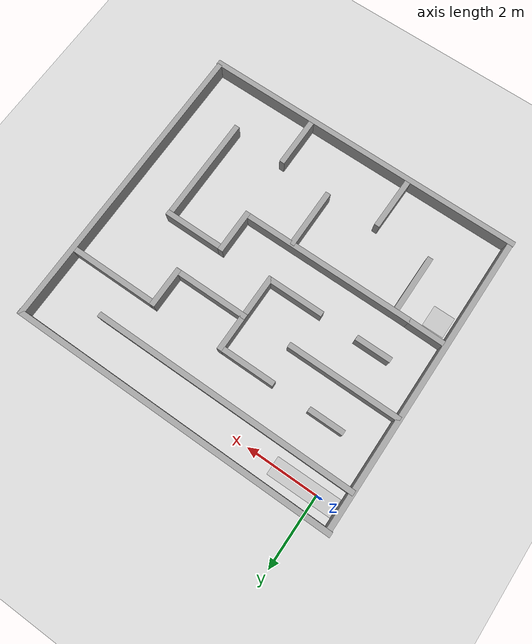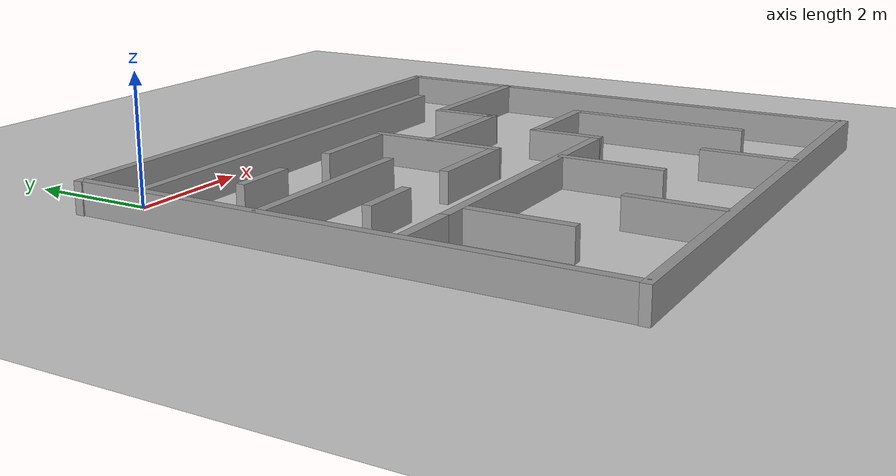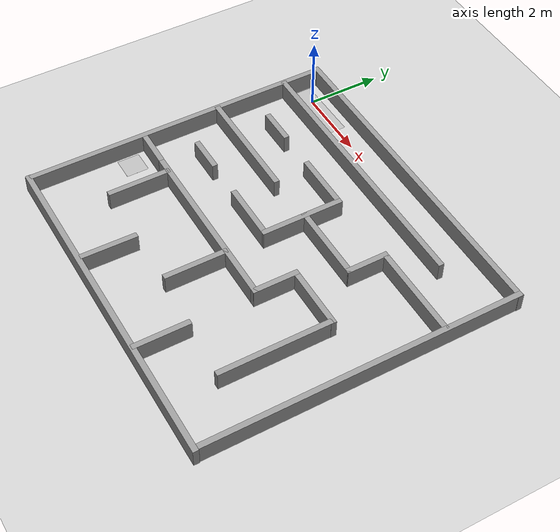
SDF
<sdf version="1.7">
 <world name="default">
  <light name="sun" type="directional">
   <pose>0 0 10 0 -0 0</pose>
   <diffuse>0.8 0.8 0.8 1</diffuse>
   <specular>0.2 0.2 0.2 1</specular>
   <attenuation>
    <range>1000</range>
    <constant>0.9</constant>
    <linear>0.01</linear>
    <quadratic>0.001</quadratic>
   </attenuation>
   <direction>-0.5 0.1 -0.9</direction>
   <spot><inner_angle>0</inner_angle><outer_angle>0</outer_angle><falloff>0</falloff></spot>
  </light>
  <model name="ground_plane">
   <static>1</static>
   <link name="link">
    <collision name="collision">
     <geometry><plane><normal>0 0 1</normal><size>100 100</size></plane></geometry>
     <surface>
      <contact><collide_bitmask>65535</collide_bitmask></contact>
      <friction><ode><mu>100</mu><mu2>50</mu2></ode></friction>
     </surface>
    </collision>
    <visual name="visual">
     <cast_shadows>0</cast_shadows>
     <geometry><plane><normal>0 0 1</normal><size>100 100</size></plane></geometry>
     <material>
      <script><uri>file://media/materials/scripts/gazebo.material</uri><name>Gazebo/Grey</name></script>
     </material>
    </visual>
   </link>
  </model>
  <gravity>0 0 -9.8</gravity>
  <magnetic_field>6e-06 2.3e-05 -4.2e-05</magnetic_field>
  <atmosphere type="adiabatic"/>
  <physics name="default_physics" default="0" type="ode">
   <max_step_size>0.001</max_step_size>
   <real_time_factor>1</real_time_factor>
   <real_time_update_rate>1000</real_time_update_rate>
  </physics>
  <scene><ambient>0.4 0.4 0.4 1</ambient><background>0.7 0.7 0.7 1</background><shadows>1</shadows></scene>
  <audio><device>default</device></audio>
  <spherical_coordinates>
   <surface_model>EARTH_WGS84</surface_model>
   <latitude_deg>0</latitude_deg>
   <longitude_deg>0</longitude_deg>
   <elevation>0</elevation>
   <heading_deg>0</heading_deg>
  </spherical_coordinates>
  <model name="start_plane">
   <static>1</static>
   <link name="link">
    <collision name="collision">
     <geometry><plane><normal>0 0 1</normal><size>0.5 1.8</size></plane></geometry>
     <surface><friction><ode><mu>100</mu><mu2>50</mu2></ode></friction></surface>
    </collision>
    <visual name="visual">
     <cast_shadows>0</cast_shadows>
     <geometry><plane><normal>0 0 1</normal><size>0.5 1.8</size></plane></geometry>
     <material>
      <script>
       <uri>model://start_plane/materials/scripts</uri>
       <uri>model://start_plane/materials/textures/</uri>
       <name>StartPlane/Image</name>
      </script>
     </material>
    </visual>
   </link>
   <pose>0.365307 -0.005 0.001 0 0 -1.56</pose>
  </model>
  <model name="end_plane">
   <static>1</static>
   <link name="link">
    <collision name="collision">
     <geometry><plane><normal>0 0 1</normal><size>0.6 0.6</size></plane></geometry>
     <surface><friction><ode><mu>100</mu><mu2>50</mu2></ode></friction></surface>
    </collision>
    <visual name="visual">
     <cast_shadows>0</cast_shadows>
     <geometry><plane><normal>0 0 1</normal><size>0.6 0.6</size></plane></geometry>
     <material>
      <script>
       <uri>model://end_plane/materials/scripts</uri>
       <uri>model://end_plane/materials/textures/</uri>
       <name>EndPlane/Image</name>
      </script>
     </material>
    </visual>
   </link>
   <pose>-0.202 -5.296 0.001 0 0 -1.57</pose>
  </model>
  <model name="racethree">
   <link name="Wall_0">
    <pose>0.010168 -4.7634 0 0 -0 0</pose>
    <inertial>
     <mass>1</mass>
     <inertia><ixx>1</ixx><ixy>0</ixy><ixz>0</ixz><iyy>1</iyy><iyz>0</iyz><izz>1</izz></inertia>
    </inertial>
    <visual name="Wall_0_Visual">
     <pose>0 0 0.25 0 -0 0</pose>
     <geometry><box><size>9.25 0.15 0.5</size></box></geometry>
     <material>
      <script><uri>file://media/materials/scripts/gazebo.material</uri><name>Gazebo/Grey</name></script>
      <ambient>1 1 1 1</ambient>
      <shader type="pixel"><normal_map>__default__</normal_map></shader>
      <diffuse>0.7 0.7 0.7 1</diffuse>
      <specular>0.01 0.01 0.01 1</specular>
      <emissive>0 0 0 1</emissive>
     </material>
     <meta><layer>0</layer></meta>
    </visual>
    <collision name="Wall_0_Collision">
     <pose>0 0 0.25 0 -0 0</pose>
     <geometry><box><size>9.25 0.15 0.5</size></box></geometry>
     <surface>
      <friction>
       <ode><mu>1</mu><mu2>1</mu2><fdir1>0 0 0</fdir1><slip1>0</slip1><slip2>0</slip2></ode>
       <torsional>
        <coefficient>1</coefficient>
        <patch_radius>0</patch_radius>
        <surface_radius>0</surface_radius>
        <use_patch_radius>1</use_patch_radius>
        <ode><slip>0</slip></ode>
       </torsional>
      </friction>
      <bounce><restitution_coefficient>0</restitution_coefficient><threshold>1e+06</threshold></bounce>
      <contact>
       <collide_without_contact>0</collide_without_contact>
       <collide_without_contact_bitmask>1</collide_without_contact_bitmask>
       <collide_bitmask>1</collide_bitmask>
       <ode>
        <soft_cfm>0</soft_cfm>
        <soft_erp>0.2</soft_erp>
        <kp>1e+13</kp>
        <kd>1</kd>
        <max_vel>0.01</max_vel>
        <min_depth>0</min_depth>
       </ode>
       <bullet>
        <split_impulse>1</split_impulse>
        <split_impulse_penetration_threshold>-0.01</split_impulse_penetration_threshold>
        <soft_cfm>0</soft_cfm>
        <soft_erp>0.2</soft_erp>
        <kp>1e+13</kp>
        <kd>1</kd>
       </bullet>
      </contact>
     </surface>
    </collision>
   </link>
   <link name="Wall_13">
    <pose>4.54176 -0.478501 0 0 0 -1.5708</pose>
    <inertial>
     <mass>1</mass>
     <inertia><ixx>1</ixx><ixy>0</ixy><ixz>0</ixz><iyy>1</iyy><iyz>0</iyz><izz>1</izz></inertia>
    </inertial>
    <visual name="Wall_13_Visual">
     <pose>0 0 0.25 0 -0 0</pose>
     <geometry><box><size>8.5 0.15 0.5</size></box></geometry>
     <material>
      <script><uri>file://media/materials/scripts/gazebo.material</uri><name>Gazebo/Grey</name></script>
      <ambient>1 1 1 1</ambient>
      <shader type="pixel"><normal_map>__default__</normal_map></shader>
      <diffuse>0.7 0.7 0.7 1</diffuse>
      <specular>0.01 0.01 0.01 1</specular>
      <emissive>0 0 0 1</emissive>
     </material>
     <meta><layer>0</layer></meta>
    </visual>
    <collision name="Wall_13_Collision">
     <pose>0 0 0.25 0 -0 0</pose>
     <geometry><box><size>8.5 0.15 0.5</size></box></geometry>
     <surface>
      <friction>
       <ode><mu>1</mu><mu2>1</mu2><fdir1>0 0 0</fdir1><slip1>0</slip1><slip2>0</slip2></ode>
       <torsional>
        <coefficient>1</coefficient>
        <patch_radius>0</patch_radius>
        <surface_radius>0</surface_radius>
        <use_patch_radius>1</use_patch_radius>
        <ode><slip>0</slip></ode>
       </torsional>
      </friction>
      <bounce><restitution_coefficient>0</restitution_coefficient><threshold>1e+06</threshold></bounce>
      <contact>
       <collide_without_contact>0</collide_without_contact>
       <collide_without_contact_bitmask>1</collide_without_contact_bitmask>
       <collide_bitmask>1</collide_bitmask>
       <ode>
        <soft_cfm>0</soft_cfm>
        <soft_erp>0.2</soft_erp>
        <kp>1e+13</kp>
        <kd>1</kd>
        <max_vel>0.01</max_vel>
        <min_depth>0</min_depth>
       </ode>
       <bullet>
        <split_impulse>1</split_impulse>
        <split_impulse_penetration_threshold>-0.01</split_impulse_penetration_threshold>
        <soft_cfm>0</soft_cfm>
        <soft_erp>0.2</soft_erp>
        <kp>1e+13</kp>
        <kd>1</kd>
       </bullet>
      </contact>
     </surface>
    </collision>
   </link>
   <link name="Wall_16">
    <pose>-0.810845 2.63593 0 0 -0 0</pose>
    <inertial>
     <mass>1</mass>
     <inertia><ixx>1</ixx><ixy>0</ixy><ixz>0</ixz><iyy>1</iyy><iyz>0</iyz><izz>1</izz></inertia>
    </inertial>
    <visual name="Wall_16_Visual">
     <pose>0 0 0.25 0 -0 0</pose>
     <geometry><box><size>7.5 0.15 0.5</size></box></geometry>
     <material>
      <script><uri>file://media/materials/scripts/gazebo.material</uri><name>Gazebo/Grey</name></script>
      <ambient>1 1 1 1</ambient>
      <shader type="pixel"><normal_map>__default__</normal_map></shader>
      <diffuse>0.7 0.7 0.7 1</diffuse>
      <specular>0.01 0.01 0.01 1</specular>
      <emissive>0 0 0 1</emissive>
     </material>
     <meta><layer>0</layer></meta>
    </visual>
    <collision name="Wall_16_Collision">
     <pose>0 0 0.25 0 -0 0</pose>
     <geometry><box><size>7.5 0.15 0.5</size></box></geometry>
     <surface>
      <friction>
       <ode><mu>1</mu><mu2>1</mu2><fdir1>0 0 0</fdir1><slip1>0</slip1><slip2>0</slip2></ode>
       <torsional>
        <coefficient>1</coefficient>
        <patch_radius>0</patch_radius>
        <surface_radius>0</surface_radius>
        <use_patch_radius>1</use_patch_radius>
        <ode><slip>0</slip></ode>
       </torsional>
      </friction>
      <bounce><restitution_coefficient>0</restitution_coefficient><threshold>1e+06</threshold></bounce>
      <contact>
       <collide_without_contact>0</collide_without_contact>
       <collide_without_contact_bitmask>1</collide_without_contact_bitmask>
       <collide_bitmask>1</collide_bitmask>
       <ode>
        <soft_cfm>0</soft_cfm>
        <soft_erp>0.2</soft_erp>
        <kp>1e+13</kp>
        <kd>1</kd>
        <max_vel>0.01</max_vel>
        <min_depth>0</min_depth>
       </ode>
       <bullet>
        <split_impulse>1</split_impulse>
        <split_impulse_penetration_threshold>-0.01</split_impulse_penetration_threshold>
        <soft_cfm>0</soft_cfm>
        <soft_erp>0.2</soft_erp>
        <kp>1e+13</kp>
        <kd>1</kd>
       </bullet>
      </contact>
     </surface>
    </collision>
   </link>
   <link name="Wall_24">
    <pose>-1.117 1.60767 0 0 -0 0</pose>
    <inertial>
     <mass>1</mass>
     <inertia><ixx>1</ixx><ixy>0</ixy><ixz>0</ixz><iyy>1</iyy><iyz>0</iyz><izz>1</izz></inertia>
    </inertial>
    <visual name="Wall_24_Visual">
     <pose>0.27 0 0.25 0 -0 0</pose>
     <geometry><box><size>1.50561 0.15 0.5</size></box></geometry>
     <material>
      <script><uri>file://media/materials/scripts/gazebo.material</uri><name>Gazebo/Grey</name></script>
      <ambient>1 1 1 1</ambient>
      <shader type="vertex"><normal_map>__default__</normal_map></shader>
      <diffuse>0.7 0.7 0.7 1</diffuse>
      <specular>0.01 0.01 0.01 1</specular>
      <emissive>0 0 0 1</emissive>
     </material>
     <meta><layer>0</layer></meta>
    </visual>
    <collision name="Wall_24_Collision">
     <pose>0.27 0 0.25 0 -0 0</pose>
     <geometry><box><size>1.50561 0.15 0.5</size></box></geometry>
     <surface>
      <friction>
       <ode><mu>1</mu><mu2>1</mu2><fdir1>0 0 0</fdir1><slip1>0</slip1><slip2>0</slip2></ode>
       <torsional>
        <coefficient>1</coefficient>
        <patch_radius>0</patch_radius>
        <surface_radius>0</surface_radius>
        <use_patch_radius>1</use_patch_radius>
        <ode><slip>0</slip></ode>
       </torsional>
      </friction>
      <bounce><restitution_coefficient>0</restitution_coefficient><threshold>1e+06</threshold></bounce>
      <contact>
       <collide_without_contact>0</collide_without_contact>
       <collide_without_contact_bitmask>1</collide_without_contact_bitmask>
       <collide_bitmask>1</collide_bitmask>
       <ode>
        <soft_cfm>0</soft_cfm>
        <soft_erp>0.2</soft_erp>
        <kp>1e+13</kp>
        <kd>1</kd>
        <max_vel>0.01</max_vel>
        <min_depth>0</min_depth>
       </ode>
       <bullet>
        <split_impulse>1</split_impulse>
        <split_impulse_penetration_threshold>-0.01</split_impulse_penetration_threshold>
        <soft_cfm>0</soft_cfm>
        <soft_erp>0.2</soft_erp>
        <kp>1e+13</kp>
        <kd>1</kd>
       </bullet>
      </contact>
     </surface>
    </collision>
   </link>
   <link name="Wall_25">
    <pose>-0.029 0.557668 0 0 0 -1.5708</pose>
    <visual name="Wall_25_Visual">
     <pose>0 0 0.25 0 -0 0</pose>
     <geometry><box><size>2.25 0.15 0.5</size></box></geometry>
     <material>
      <script><uri>file://media/materials/scripts/gazebo.material</uri><name>Gazebo/Grey</name></script>
      <ambient>1 1 1 1</ambient>
      <shader type="pixel"/>
     </material>
     <meta><layer>0</layer></meta>
    </visual>
    <collision name="Wall_25_Collision">
     <pose>0 0 0.25 0 -0 0</pose>
     <geometry><box><size>2.25 0.15 0.5</size></box></geometry>
     <surface>
      <friction>
       <ode><mu>1</mu><mu2>1</mu2><fdir1>0 0 0</fdir1><slip1>0</slip1><slip2>0</slip2></ode>
       <torsional>
        <coefficient>1</coefficient>
        <patch_radius>0</patch_radius>
        <surface_radius>0</surface_radius>
        <use_patch_radius>1</use_patch_radius>
        <ode><slip>0</slip></ode>
       </torsional>
      </friction>
      <bounce><restitution_coefficient>0</restitution_coefficient><threshold>1e+06</threshold></bounce>
      <contact>
       <collide_without_contact>0</collide_without_contact>
       <collide_without_contact_bitmask>1</collide_without_contact_bitmask>
       <collide_bitmask>1</collide_bitmask>
       <ode>
        <soft_cfm>0</soft_cfm>
        <soft_erp>0.2</soft_erp>
        <kp>1e+13</kp>
        <kd>1</kd>
        <max_vel>0.01</max_vel>
        <min_depth>0</min_depth>
       </ode>
       <bullet>
        <split_impulse>1</split_impulse>
        <split_impulse_penetration_threshold>-0.01</split_impulse_penetration_threshold>
        <soft_cfm>0</soft_cfm>
        <soft_erp>0.2</soft_erp>
        <kp>1e+13</kp>
        <kd>1</kd>
       </bullet>
      </contact>
     </surface>
    </collision>
   </link>
   <link name="Wall_26">
    <pose>-1.079 -0.492332 0 0 -0 3.14159</pose>
    <inertial>
     <mass>1</mass>
     <inertia><ixx>1</ixx><ixy>0</ixy><ixz>0</ixz><iyy>1</iyy><iyz>0</iyz><izz>1</izz></inertia>
    </inertial>
    <visual name="Wall_26_Visual">
     <pose>-0.27 0 0.25 0 -0 0</pose>
     <geometry><box><size>1.6 0.15 0.5</size></box></geometry>
     <material>
      <script><uri>file://media/materials/scripts/gazebo.material</uri><name>Gazebo/Grey</name></script>
      <ambient>1 1 1 1</ambient>
      <shader type="vertex"><normal_map>__default__</normal_map></shader>
      <diffuse>0.7 0.7 0.7 1</diffuse>
      <specular>0.01 0.01 0.01 1</specular>
      <emissive>0 0 0 1</emissive>
     </material>
     <meta><layer>0</layer></meta>
    </visual>
    <collision name="Wall_26_Collision">
     <pose>-0.27 0 0.25 0 -0 0</pose>
     <geometry><box><size>1.6 0.15 0.5</size></box></geometry>
     <surface>
      <friction>
       <ode><mu>1</mu><mu2>1</mu2><fdir1>0 0 0</fdir1><slip1>0</slip1><slip2>0</slip2></ode>
       <torsional>
        <coefficient>1</coefficient>
        <patch_radius>0</patch_radius>
        <surface_radius>0</surface_radius>
        <use_patch_radius>1</use_patch_radius>
        <ode><slip>0</slip></ode>
       </torsional>
      </friction>
      <bounce><restitution_coefficient>0</restitution_coefficient><threshold>1e+06</threshold></bounce>
      <contact>
       <collide_without_contact>0</collide_without_contact>
       <collide_without_contact_bitmask>1</collide_without_contact_bitmask>
       <collide_bitmask>1</collide_bitmask>
       <ode>
        <soft_cfm>0</soft_cfm>
        <soft_erp>0.2</soft_erp>
        <kp>1e+13</kp>
        <kd>1</kd>
        <max_vel>0.01</max_vel>
        <min_depth>0</min_depth>
       </ode>
       <bullet>
        <split_impulse>1</split_impulse>
        <split_impulse_penetration_threshold>-0.01</split_impulse_penetration_threshold>
        <soft_cfm>0</soft_cfm>
        <soft_erp>0.2</soft_erp>
        <kp>1e+13</kp>
        <kd>1</kd>
       </bullet>
      </contact>
     </surface>
    </collision>
   </link>
   <link name="Wall_32">
    <pose>-2.9484 0.603587 0 0 -0 0</pose>
    <inertial>
     <mass>1</mass>
     <inertia><ixx>1</ixx><ixy>0</ixy><ixz>0</ixz><iyy>1</iyy><iyz>0</iyz><izz>1</izz></inertia>
    </inertial>
    <visual name="Wall_32_Visual">
     <pose>0 0 0.25 0 -0 0</pose>
     <geometry><box><size>3.2 0.15 0.5</size></box></geometry>
     <material>
      <script><uri>file://media/materials/scripts/gazebo.material</uri><name>Gazebo/Grey</name></script>
      <ambient>1 1 1 1</ambient>
      <shader type="pixel"><normal_map>__default__</normal_map></shader>
      <diffuse>0.7 0.7 0.7 1</diffuse>
      <specular>0.01 0.01 0.01 1</specular>
      <emissive>0 0 0 1</emissive>
     </material>
     <meta><layer>0</layer></meta>
    </visual>
    <collision name="Wall_32_Collision">
     <pose>0 0 0.25 0 -0 0</pose>
     <geometry><box><size>3.2 0.15 0.5</size></box></geometry>
     <surface>
      <friction>
       <ode><mu>1</mu><mu2>1</mu2><fdir1>0 0 0</fdir1><slip1>0</slip1><slip2>0</slip2></ode>
       <torsional>
        <coefficient>1</coefficient>
        <patch_radius>0</patch_radius>
        <surface_radius>0</surface_radius>
        <use_patch_radius>1</use_patch_radius>
        <ode><slip>0</slip></ode>
       </torsional>
      </friction>
      <bounce><restitution_coefficient>0</restitution_coefficient><threshold>1e+06</threshold></bounce>
      <contact>
       <collide_without_contact>0</collide_without_contact>
       <collide_without_contact_bitmask>1</collide_without_contact_bitmask>
       <collide_bitmask>1</collide_bitmask>
       <ode>
        <soft_cfm>0</soft_cfm>
        <soft_erp>0.2</soft_erp>
        <kp>1e+13</kp>
        <kd>1</kd>
        <max_vel>0.01</max_vel>
        <min_depth>0</min_depth>
       </ode>
       <bullet>
        <split_impulse>1</split_impulse>
        <split_impulse_penetration_threshold>-0.01</split_impulse_penetration_threshold>
        <soft_cfm>0</soft_cfm>
        <soft_erp>0.2</soft_erp>
        <kp>1e+13</kp>
        <kd>1</kd>
       </bullet>
      </contact>
     </surface>
    </collision>
   </link>
   <link name="Wall_36">
    <pose>3.30469 1.65167 0 0 -0 3.14159</pose>
    <inertial>
     <mass>1</mass>
     <inertia><ixx>1</ixx><ixy>0</ixy><ixz>0</ixz><iyy>1</iyy><iyz>0</iyz><izz>1</izz></inertia>
    </inertial>
    <visual name="Wall_36_Visual">
     <pose>0 0 0.25 0 -0 0</pose>
     <geometry><box><size>2.5 0.15 0.5</size></box></geometry>
     <material>
      <script><uri>file://media/materials/scripts/gazebo.material</uri><name>Gazebo/Grey</name></script>
      <ambient>1 1 1 1</ambient>
      <shader type="pixel"><normal_map>__default__</normal_map></shader>
      <diffuse>0.7 0.7 0.7 1</diffuse>
      <specular>0.01 0.01 0.01 1</specular>
      <emissive>0 0 0 1</emissive>
     </material>
     <meta><layer>0</layer></meta>
    </visual>
    <collision name="Wall_36_Collision">
     <pose>0 0 0.25 0 -0 0</pose>
     <geometry><box><size>2.5 0.15 0.5</size></box></geometry>
     <surface>
      <friction>
       <ode><mu>1</mu><mu2>1</mu2><fdir1>0 0 0</fdir1><slip1>0</slip1><slip2>0</slip2></ode>
       <torsional>
        <coefficient>1</coefficient>
        <patch_radius>0</patch_radius>
        <surface_radius>0</surface_radius>
        <use_patch_radius>1</use_patch_radius>
        <ode><slip>0</slip></ode>
       </torsional>
      </friction>
      <bounce><restitution_coefficient>0</restitution_coefficient><threshold>1e+06</threshold></bounce>
      <contact>
       <collide_without_contact>0</collide_without_contact>
       <collide_without_contact_bitmask>1</collide_without_contact_bitmask>
       <collide_bitmask>1</collide_bitmask>
       <ode>
        <soft_cfm>0</soft_cfm>
        <soft_erp>0.2</soft_erp>
        <kp>1e+13</kp>
        <kd>1</kd>
        <max_vel>0.01</max_vel>
        <min_depth>0</min_depth>
       </ode>
       <bullet>
        <split_impulse>1</split_impulse>
        <split_impulse_penetration_threshold>-0.01</split_impulse_penetration_threshold>
        <soft_cfm>0</soft_cfm>
        <soft_erp>0.2</soft_erp>
        <kp>1e+13</kp>
        <kd>1</kd>
       </bullet>
      </contact>
     </surface>
    </collision>
   </link>
   <link name="Wall_44">
    <pose>0.977 0.647668 0 0 -0 3.14159</pose>
    <visual name="Wall_44_Visual">
     <pose>0 0 0.25 0 -0 0</pose>
     <geometry><box><size>2.15 0.15 0.5</size></box></geometry>
     <material>
      <script><uri>file://media/materials/scripts/gazebo.material</uri><name>Gazebo/Grey</name></script>
      <ambient>1 1 1 1</ambient>
      <shader type="pixel"/>
     </material>
     <meta><layer>0</layer></meta>
    </visual>
    <collision name="Wall_44_Collision">
     <pose>0 0 0.25 0 -0 0</pose>
     <geometry><box><size>2.15 0.15 0.5</size></box></geometry>
     <surface>
      <friction>
       <ode><mu>1</mu><mu2>1</mu2><fdir1>0 0 0</fdir1><slip1>0</slip1><slip2>0</slip2></ode>
       <torsional>
        <coefficient>1</coefficient>
        <patch_radius>0</patch_radius>
        <surface_radius>0</surface_radius>
        <use_patch_radius>1</use_patch_radius>
        <ode><slip>0</slip></ode>
       </torsional>
      </friction>
      <bounce><restitution_coefficient>0</restitution_coefficient><threshold>1e+06</threshold></bounce>
      <contact>
       <collide_without_contact>0</collide_without_contact>
       <collide_without_contact_bitmask>1</collide_without_contact_bitmask>
       <collide_bitmask>1</collide_bitmask>
       <ode>
        <soft_cfm>0</soft_cfm>
        <soft_erp>0.2</soft_erp>
        <kp>1e+13</kp>
        <kd>1</kd>
        <max_vel>0.01</max_vel>
        <min_depth>0</min_depth>
       </ode>
       <bullet>
        <split_impulse>1</split_impulse>
        <split_impulse_penetration_threshold>-0.01</split_impulse_penetration_threshold>
        <soft_cfm>0</soft_cfm>
        <soft_erp>0.2</soft_erp>
        <kp>1e+13</kp>
        <kd>1</kd>
       </bullet>
      </contact>
     </surface>
    </collision>
   </link>
   <link name="Wall_47">
    <pose>2.00283 1.15167 0 0 0 -1.5708</pose>
    <visual name="Wall_47_Visual">
     <pose>0 0 0.25 0 -0 0</pose>
     <geometry><box><size>1.15 0.15 0.5</size></box></geometry>
     <material>
      <script><uri>file://media/materials/scripts/gazebo.material</uri><name>Gazebo/Grey</name></script>
      <ambient>1 1 1 1</ambient>
      <shader type="pixel"/>
     </material>
     <meta><layer>0</layer></meta>
    </visual>
    <collision name="Wall_47_Collision">
     <pose>0 0 0.25 0 -0 0</pose>
     <geometry><box><size>1.15 0.15 0.5</size></box></geometry>
     <surface>
      <friction>
       <ode><mu>1</mu><mu2>1</mu2><fdir1>0 0 0</fdir1><slip1>0</slip1><slip2>0</slip2></ode>
       <torsional>
        <coefficient>1</coefficient>
        <patch_radius>0</patch_radius>
        <surface_radius>0</surface_radius>
        <use_patch_radius>1</use_patch_radius>
        <ode><slip>0</slip></ode>
       </torsional>
      </friction>
      <bounce><restitution_coefficient>0</restitution_coefficient><threshold>1e+06</threshold></bounce>
      <contact>
       <collide_without_contact>0</collide_without_contact>
       <collide_without_contact_bitmask>1</collide_without_contact_bitmask>
       <collide_bitmask>1</collide_bitmask>
       <ode>
        <soft_cfm>0</soft_cfm>
        <soft_erp>0.2</soft_erp>
        <kp>1e+13</kp>
        <kd>1</kd>
        <max_vel>0.01</max_vel>
        <min_depth>0</min_depth>
       </ode>
       <bullet>
        <split_impulse>1</split_impulse>
        <split_impulse_penetration_threshold>-0.01</split_impulse_penetration_threshold>
        <soft_cfm>0</soft_cfm>
        <soft_erp>0.2</soft_erp>
        <kp>1e+13</kp>
        <kd>1</kd>
       </bullet>
      </contact>
     </surface>
    </collision>
   </link>
   <link name="Wall_53">
    <pose>-0.981 -1.57933 0 0 -0 0</pose>
    <visual name="Wall_53_Visual">
     <pose>0 0 0.25 0 -0 0</pose>
     <geometry><box><size>5 0.15 0.5</size></box></geometry>
     <material>
      <script><uri>file://media/materials/scripts/gazebo.material</uri><name>Gazebo/Grey</name></script>
      <ambient>1 1 1 1</ambient>
      <shader type="pixel"/>
     </material>
     <meta><layer>0</layer></meta>
    </visual>
    <collision name="Wall_53_Collision">
     <pose>0 0 0.25 0 -0 0</pose>
     <geometry><box><size>5 0.15 0.5</size></box></geometry>
     <surface>
      <friction>
       <ode><mu>1</mu><mu2>1</mu2><fdir1>0 0 0</fdir1><slip1>0</slip1><slip2>0</slip2></ode>
       <torsional>
        <coefficient>1</coefficient>
        <patch_radius>0</patch_radius>
        <surface_radius>0</surface_radius>
        <use_patch_radius>1</use_patch_radius>
        <ode><slip>0</slip></ode>
       </torsional>
      </friction>
      <bounce><restitution_coefficient>0</restitution_coefficient><threshold>1e+06</threshold></bounce>
      <contact>
       <collide_without_contact>0</collide_without_contact>
       <collide_without_contact_bitmask>1</collide_without_contact_bitmask>
       <collide_bitmask>1</collide_bitmask>
       <ode>
        <soft_cfm>0</soft_cfm>
        <soft_erp>0.2</soft_erp>
        <kp>1e+13</kp>
        <kd>1</kd>
        <max_vel>0.01</max_vel>
        <min_depth>0</min_depth>
       </ode>
       <bullet>
        <split_impulse>1</split_impulse>
        <split_impulse_penetration_threshold>-0.01</split_impulse_penetration_threshold>
        <soft_cfm>0</soft_cfm>
        <soft_erp>0.2</soft_erp>
        <kp>1e+13</kp>
        <kd>1</kd>
       </bullet>
      </contact>
     </surface>
    </collision>
   </link>
   <link name="Wall_56">
    <pose>1.444 -1.02933 0 0 -0 1.5708</pose>
    <visual name="Wall_56_Visual">
     <pose>0 0 0.25 0 -0 0</pose>
     <geometry><box><size>1.25 0.15 0.5</size></box></geometry>
     <material>
      <script><uri>file://media/materials/scripts/gazebo.material</uri><name>Gazebo/Grey</name></script>
      <ambient>1 1 1 1</ambient>
      <shader type="pixel"/>
     </material>
     <meta><layer>0</layer></meta>
    </visual>
    <collision name="Wall_56_Collision">
     <pose>0 0 0.25 0 -0 0</pose>
     <geometry><box><size>1.25 0.15 0.5</size></box></geometry>
     <surface>
      <friction>
       <ode><mu>1</mu><mu2>1</mu2><fdir1>0 0 0</fdir1><slip1>0</slip1><slip2>0</slip2></ode>
       <torsional>
        <coefficient>1</coefficient>
        <patch_radius>0</patch_radius>
        <surface_radius>0</surface_radius>
        <use_patch_radius>1</use_patch_radius>
        <ode><slip>0</slip></ode>
       </torsional>
      </friction>
      <bounce><restitution_coefficient>0</restitution_coefficient><threshold>1e+06</threshold></bounce>
      <contact>
       <collide_without_contact>0</collide_without_contact>
       <collide_without_contact_bitmask>1</collide_without_contact_bitmask>
       <collide_bitmask>1</collide_bitmask>
       <ode>
        <soft_cfm>0</soft_cfm>
        <soft_erp>0.2</soft_erp>
        <kp>1e+13</kp>
        <kd>1</kd>
        <max_vel>0.01</max_vel>
        <min_depth>0</min_depth>
       </ode>
       <bullet>
        <split_impulse>1</split_impulse>
        <split_impulse_penetration_threshold>-0.01</split_impulse_penetration_threshold>
        <soft_cfm>0</soft_cfm>
        <soft_erp>0.2</soft_erp>
        <kp>1e+13</kp>
        <kd>1</kd>
       </bullet>
      </contact>
     </surface>
    </collision>
   </link>
   <link name="Wall_57">
    <pose>2.14037 -0.479332 0 0 -0 0</pose>
    <inertial>
     <mass>1</mass>
     <inertia><ixx>1</ixx><ixy>0</ixy><ixz>0</ixz><iyy>1</iyy><iyz>0</iyz><izz>1</izz></inertia>
    </inertial>
    <visual name="Wall_57_Visual">
     <pose>0.15 0 0.25 0 -0 0</pose>
     <geometry><box><size>1.75 0.15 0.5</size></box></geometry>
     <material>
      <script><uri>file://media/materials/scripts/gazebo.material</uri><name>Gazebo/Grey</name></script>
      <ambient>1 1 1 1</ambient>
      <shader type="vertex"><normal_map>__default__</normal_map></shader>
      <diffuse>0.7 0.7 0.7 1</diffuse>
      <specular>0.01 0.01 0.01 1</specular>
      <emissive>0 0 0 1</emissive>
     </material>
     <meta><layer>0</layer></meta>
    </visual>
    <collision name="Wall_57_Collision">
     <pose>0.15 0 0.25 0 -0 0</pose>
     <geometry><box><size>1.75 0.15 0.5</size></box></geometry>
     <surface>
      <friction>
       <ode><mu>1</mu><mu2>1</mu2><fdir1>0 0 0</fdir1><slip1>0</slip1><slip2>0</slip2></ode>
       <torsional>
        <coefficient>1</coefficient>
        <patch_radius>0</patch_radius>
        <surface_radius>0</surface_radius>
        <use_patch_radius>1</use_patch_radius>
        <ode><slip>0</slip></ode>
       </torsional>
      </friction>
      <bounce><restitution_coefficient>0</restitution_coefficient><threshold>1e+06</threshold></bounce>
      <contact>
       <collide_without_contact>0</collide_without_contact>
       <collide_without_contact_bitmask>1</collide_without_contact_bitmask>
       <collide_bitmask>1</collide_bitmask>
       <ode>
        <soft_cfm>0</soft_cfm>
        <soft_erp>0.2</soft_erp>
        <kp>1e+13</kp>
        <kd>1</kd>
        <max_vel>0.01</max_vel>
        <min_depth>0</min_depth>
       </ode>
       <bullet>
        <split_impulse>1</split_impulse>
        <split_impulse_penetration_threshold>-0.01</split_impulse_penetration_threshold>
        <soft_cfm>0</soft_cfm>
        <soft_erp>0.2</soft_erp>
        <kp>1e+13</kp>
        <kd>1</kd>
       </bullet>
      </contact>
     </surface>
    </collision>
   </link>
   <link name="Wall_6">
    <pose>-4.52817 -0.524771 0 0 -0 1.5708</pose>
    <inertial>
     <mass>1</mass>
     <inertia><ixx>1</ixx><ixy>0</ixy><ixz>0</ixz><iyy>1</iyy><iyz>0</iyz><izz>1</izz></inertia>
    </inertial>
    <visual name="Wall_6_Visual">
     <pose>0 0 0.25 0 -0 0</pose>
     <geometry><box><size>8.5 0.15 0.5</size></box></geometry>
     <material>
      <script><uri>file://media/materials/scripts/gazebo.material</uri><name>Gazebo/Grey</name></script>
      <ambient>1 1 1 1</ambient>
      <shader type="pixel"><normal_map>__default__</normal_map></shader>
      <diffuse>0.7 0.7 0.7 1</diffuse>
      <specular>0.01 0.01 0.01 1</specular>
      <emissive>0 0 0 1</emissive>
     </material>
     <meta><layer>0</layer></meta>
    </visual>
    <collision name="Wall_6_Collision">
     <pose>0 0 0.25 0 -0 0</pose>
     <geometry><box><size>8.5 0.15 0.5</size></box></geometry>
     <surface>
      <friction>
       <ode><mu>1</mu><mu2>1</mu2><fdir1>0 0 0</fdir1><slip1>0</slip1><slip2>0</slip2></ode>
       <torsional>
        <coefficient>1</coefficient>
        <patch_radius>0</patch_radius>
        <surface_radius>0</surface_radius>
        <use_patch_radius>1</use_patch_radius>
        <ode><slip>0</slip></ode>
       </torsional>
      </friction>
      <bounce><restitution_coefficient>0</restitution_coefficient><threshold>1e+06</threshold></bounce>
      <contact>
       <collide_without_contact>0</collide_without_contact>
       <collide_without_contact_bitmask>1</collide_without_contact_bitmask>
       <collide_bitmask>1</collide_bitmask>
       <ode>
        <soft_cfm>0</soft_cfm>
        <soft_erp>0.2</soft_erp>
        <kp>1e+13</kp>
        <kd>1</kd>
        <max_vel>0.01</max_vel>
        <min_depth>0</min_depth>
       </ode>
       <bullet>
        <split_impulse>1</split_impulse>
        <split_impulse_penetration_threshold>-0.01</split_impulse_penetration_threshold>
        <soft_cfm>0</soft_cfm>
        <soft_erp>0.2</soft_erp>
        <kp>1e+13</kp>
        <kd>1</kd>
       </bullet>
      </contact>
     </surface>
    </collision>
   </link>
   <link name="Wall_8">
    <pose>-0.000113 3.69988 0 0 -0 0</pose>
    <inertial>
     <mass>1</mass>
     <inertia><ixx>1</ixx><ixy>0</ixy><ixz>0</ixz><iyy>1</iyy><iyz>0</iyz><izz>1</izz></inertia>
    </inertial>
    <visual name="Wall_8_Visual">
     <pose>0 0 0.25 0 -0 0</pose>
     <geometry><box><size>9.25 0.15 0.5</size></box></geometry>
     <material>
      <script><uri>file://media/materials/scripts/gazebo.material</uri><name>Gazebo/Grey</name></script>
      <ambient>1 1 1 1</ambient>
      <shader type="pixel"><normal_map>__default__</normal_map></shader>
      <diffuse>0.7 0.7 0.7 1</diffuse>
      <specular>0.01 0.01 0.01 1</specular>
      <emissive>0 0 0 1</emissive>
     </material>
     <meta><layer>0</layer></meta>
    </visual>
    <collision name="Wall_8_Collision">
     <pose>0 0 0.25 0 -0 0</pose>
     <geometry><box><size>9.25 0.15 0.5</size></box></geometry>
     <surface>
      <friction>
       <ode><mu>1</mu><mu2>1</mu2><fdir1>0 0 0</fdir1><slip1>0</slip1><slip2>0</slip2></ode>
       <torsional>
        <coefficient>1</coefficient>
        <patch_radius>0</patch_radius>
        <surface_radius>0</surface_radius>
        <use_patch_radius>1</use_patch_radius>
        <ode><slip>0</slip></ode>
       </torsional>
      </friction>
      <bounce><restitution_coefficient>0</restitution_coefficient><threshold>1e+06</threshold></bounce>
      <contact>
       <collide_without_contact>0</collide_without_contact>
       <collide_without_contact_bitmask>1</collide_without_contact_bitmask>
       <collide_bitmask>1</collide_bitmask>
       <ode>
        <soft_cfm>0</soft_cfm>
        <soft_erp>0.2</soft_erp>
        <kp>1e+13</kp>
        <kd>1</kd>
        <max_vel>0.01</max_vel>
        <min_depth>0</min_depth>
       </ode>
       <bullet>
        <split_impulse>1</split_impulse>
        <split_impulse_penetration_threshold>-0.01</split_impulse_penetration_threshold>
        <soft_cfm>0</soft_cfm>
        <soft_erp>0.2</soft_erp>
        <kp>1e+13</kp>
        <kd>1</kd>
       </bullet>
      </contact>
     </surface>
    </collision>
   </link>
   <static>1</static>
   <pose>3.90696 -3.18013 0 0 -0 0</pose>
  </model>
  <model name="racetest11_clone_3">
   <link name="Wall_6">
    <pose>-1.11983 1.09062 0 0 -0 0.000993</pose>
    <inertial>
     <mass>1</mass>
     <inertia><ixx>1</ixx><ixy>0</ixy><ixz>0</ixz><iyy>1</iyy><iyz>0</iyz><izz>1</izz></inertia>
    </inertial>
    <visual name="Wall_6_Visual">
     <pose>0 0 0.25 0 -0 0</pose>
     <geometry><box><size>1 0.15 0.5</size></box></geometry>
     <material>
      <script><uri>file://media/materials/scripts/gazebo.material</uri><name>Gazebo/Grey</name></script>
      <ambient>1 1 1 1</ambient>
      <shader type="pixel"><normal_map>__default__</normal_map></shader>
      <diffuse>0.7 0.7 0.7 1</diffuse>
      <specular>0.01 0.01 0.01 1</specular>
      <emissive>0 0 0 1</emissive>
     </material>
     <meta><layer>0</layer></meta>
    </visual>
    <collision name="Wall_6_Collision">
     <pose>0 0 0.25 0 -0 0</pose>
     <geometry><box><size>1 0.15 0.5</size></box></geometry>
     <surface>
      <friction>
       <ode><mu>1</mu><mu2>1</mu2><fdir1>0 0 0</fdir1><slip1>0</slip1><slip2>0</slip2></ode>
       <torsional>
        <coefficient>1</coefficient>
        <patch_radius>0</patch_radius>
        <surface_radius>0</surface_radius>
        <use_patch_radius>1</use_patch_radius>
        <ode><slip>0</slip></ode>
       </torsional>
      </friction>
      <bounce><restitution_coefficient>0</restitution_coefficient><threshold>1e+06</threshold></bounce>
      <contact>
       <collide_without_contact>0</collide_without_contact>
       <collide_without_contact_bitmask>1</collide_without_contact_bitmask>
       <collide_bitmask>1</collide_bitmask>
       <ode>
        <soft_cfm>0</soft_cfm>
        <soft_erp>0.2</soft_erp>
        <kp>1e+13</kp>
        <kd>1</kd>
        <max_vel>0.01</max_vel>
        <min_depth>0</min_depth>
       </ode>
       <bullet>
        <split_impulse>1</split_impulse>
        <split_impulse_penetration_threshold>-0.01</split_impulse_penetration_threshold>
        <soft_cfm>0</soft_cfm>
        <soft_erp>0.2</soft_erp>
        <kp>1e+13</kp>
        <kd>1</kd>
       </bullet>
      </contact>
     </surface>
    </collision>
   </link>
   <link name="Wall_6_clone">
    <pose>-1.12768 3.19549 0 0 -0 0.000993</pose>
    <inertial>
     <mass>1</mass>
     <inertia><ixx>1</ixx><ixy>0</ixy><ixz>0</ixz><iyy>1</iyy><iyz>0</iyz><izz>1</izz></inertia>
    </inertial>
    <visual name="Wall_6_Visual">
     <pose>0 0 0.25 0 -0 0</pose>
     <geometry><box><size>1 0.15 0.5</size></box></geometry>
     <material>
      <script><uri>file://media/materials/scripts/gazebo.material</uri><name>Gazebo/Grey</name></script>
      <ambient>1 1 1 1</ambient>
      <shader type="pixel"><normal_map>__default__</normal_map></shader>
      <diffuse>0.7 0.7 0.7 1</diffuse>
      <specular>0.01 0.01 0.01 1</specular>
      <emissive>0 0 0 1</emissive>
     </material>
     <meta><layer>0</layer></meta>
    </visual>
    <collision name="Wall_6_Collision">
     <pose>0 0 0.25 0 -0 0</pose>
     <geometry><box><size>1 0.15 0.5</size></box></geometry>
     <surface>
      <friction>
       <ode><mu>1</mu><mu2>1</mu2><fdir1>0 0 0</fdir1><slip1>0</slip1><slip2>0</slip2></ode>
       <torsional>
        <coefficient>1</coefficient>
        <patch_radius>0</patch_radius>
        <surface_radius>0</surface_radius>
        <use_patch_radius>1</use_patch_radius>
        <ode><slip>0</slip></ode>
       </torsional>
      </friction>
      <bounce><restitution_coefficient>0</restitution_coefficient><threshold>1e+06</threshold></bounce>
      <contact>
       <collide_without_contact>0</collide_without_contact>
       <collide_without_contact_bitmask>1</collide_without_contact_bitmask>
       <collide_bitmask>1</collide_bitmask>
       <ode>
        <soft_cfm>0</soft_cfm>
        <soft_erp>0.2</soft_erp>
        <kp>1e+13</kp>
        <kd>1</kd>
        <max_vel>0.01</max_vel>
        <min_depth>0</min_depth>
       </ode>
       <bullet>
        <split_impulse>1</split_impulse>
        <split_impulse_penetration_threshold>-0.01</split_impulse_penetration_threshold>
        <soft_cfm>0</soft_cfm>
        <soft_erp>0.2</soft_erp>
        <kp>1e+13</kp>
        <kd>1</kd>
       </bullet>
      </contact>
     </surface>
    </collision>
   </link>
   <link name="Wall_6_clone_0">
    <pose>0.514867 -2.39079 0 0 -0 1.55753</pose>
    <inertial>
     <mass>1</mass>
     <inertia><ixx>1</ixx><ixy>0</ixy><ixz>0</ixz><iyy>1</iyy><iyz>0</iyz><izz>1</izz></inertia>
    </inertial>
    <visual name="Wall_6_Visual">
     <pose>0 0 0.25 0 -0 0</pose>
     <geometry><box><size>1.5 0.15 0.5</size></box></geometry>
     <material>
      <script><uri>file://media/materials/scripts/gazebo.material</uri><name>Gazebo/Grey</name></script>
      <ambient>1 1 1 1</ambient>
      <shader type="pixel"><normal_map>__default__</normal_map></shader>
      <diffuse>0.7 0.7 0.7 1</diffuse>
      <specular>0.01 0.01 0.01 1</specular>
      <emissive>0 0 0 1</emissive>
     </material>
     <meta><layer>0</layer></meta>
    </visual>
    <collision name="Wall_6_Collision">
     <pose>0 0 0.25 0 -0 0</pose>
     <geometry><box><size>1.5 0.15 0.5</size></box></geometry>
     <surface>
      <friction>
       <ode><mu>1</mu><mu2>1</mu2><fdir1>0 0 0</fdir1><slip1>0</slip1><slip2>0</slip2></ode>
       <torsional>
        <coefficient>1</coefficient>
        <patch_radius>0</patch_radius>
        <surface_radius>0</surface_radius>
        <use_patch_radius>1</use_patch_radius>
        <ode><slip>0</slip></ode>
       </torsional>
      </friction>
      <bounce><restitution_coefficient>0</restitution_coefficient><threshold>1e+06</threshold></bounce>
      <contact>
       <collide_without_contact>0</collide_without_contact>
       <collide_without_contact_bitmask>1</collide_without_contact_bitmask>
       <collide_bitmask>1</collide_bitmask>
       <ode>
        <soft_cfm>0</soft_cfm>
        <soft_erp>0.2</soft_erp>
        <kp>1e+13</kp>
        <kd>1</kd>
        <max_vel>0.01</max_vel>
        <min_depth>0</min_depth>
       </ode>
       <bullet>
        <split_impulse>1</split_impulse>
        <split_impulse_penetration_threshold>-0.01</split_impulse_penetration_threshold>
        <soft_cfm>0</soft_cfm>
        <soft_erp>0.2</soft_erp>
        <kp>1e+13</kp>
        <kd>1</kd>
       </bullet>
      </contact>
     </surface>
    </collision>
   </link>
   <static>1</static>
   <pose>1.9155 -4.75372 0 0 -0 0</pose>
  </model>
  <model name="racetest11_clone3">
   <link name="Wall_6">
    <pose>-1.61166 0.392403 0 0 -0 1.5708</pose>
    <inertial>
     <mass>1</mass>
     <inertia><ixx>1</ixx><ixy>0</ixy><ixz>0</ixz><iyy>1</iyy><iyz>0</iyz><izz>1</izz></inertia>
    </inertial>
    <visual name="Wall_6_Visual">
     <pose>0 0 0.25 0 -0 0</pose>
     <geometry><box><size>1.7 0.15 0.5</size></box></geometry>
     <material>
      <script><uri>file://media/materials/scripts/gazebo.material</uri><name>Gazebo/Grey</name></script>
      <ambient>1 1 1 1</ambient>
      <shader type="pixel"><normal_map>__default__</normal_map></shader>
      <diffuse>0.7 0.7 0.7 1</diffuse>
      <specular>0.01 0.01 0.01 1</specular>
      <emissive>0 0 0 1</emissive>
     </material>
     <meta><layer>0</layer></meta>
    </visual>
    <collision name="Wall_6_Collision">
     <pose>0 0 0.25 0 -0 0</pose>
     <geometry><box><size>1.7 0.15 0.5</size></box></geometry>
     <surface>
      <friction>
       <ode><mu>1</mu><mu2>1</mu2><fdir1>0 0 0</fdir1><slip1>0</slip1><slip2>0</slip2></ode>
       <torsional>
        <coefficient>1</coefficient>
        <patch_radius>0</patch_radius>
        <surface_radius>0</surface_radius>
        <use_patch_radius>1</use_patch_radius>
        <ode><slip>0</slip></ode>
       </torsional>
      </friction>
      <bounce><restitution_coefficient>0</restitution_coefficient><threshold>1e+06</threshold></bounce>
      <contact>
       <collide_without_contact>0</collide_without_contact>
       <collide_without_contact_bitmask>1</collide_without_contact_bitmask>
       <collide_bitmask>1</collide_bitmask>
       <ode>
        <soft_cfm>0</soft_cfm>
        <soft_erp>0.2</soft_erp>
        <kp>1e+13</kp>
        <kd>1</kd>
        <max_vel>0.01</max_vel>
        <min_depth>0</min_depth>
       </ode>
       <bullet>
        <split_impulse>1</split_impulse>
        <split_impulse_penetration_threshold>-0.01</split_impulse_penetration_threshold>
        <soft_cfm>0</soft_cfm>
        <soft_erp>0.2</soft_erp>
        <kp>1e+13</kp>
        <kd>1</kd>
       </bullet>
      </contact>
     </surface>
    </collision>
   </link>
   <link name="Wall_6_clone">
    <pose>-5.61458 1.22985 0 0 0 -0.013937</pose>
    <visual name="Wall_6_Visual">
     <pose>0 0 0.25 0 -0 0</pose>
     <geometry><box><size>1 0.15 0.5</size></box></geometry>
     <material>
      <script><uri>file://media/materials/scripts/gazebo.material</uri><name>Gazebo/Grey</name></script>
      <ambient>1 1 1 1</ambient>
      <shader type="pixel"/>
     </material>
     <meta><layer>0</layer></meta>
    </visual>
    <collision name="Wall_6_Collision">
     <pose>0 0 0.25 0 -0 0</pose>
     <geometry><box><size>1 0.15 0.5</size></box></geometry>
     <surface>
      <friction>
       <ode><mu>1</mu><mu2>1</mu2><fdir1>0 0 0</fdir1><slip1>0</slip1><slip2>0</slip2></ode>
       <torsional>
        <coefficient>1</coefficient>
        <patch_radius>0</patch_radius>
        <surface_radius>0</surface_radius>
        <use_patch_radius>1</use_patch_radius>
        <ode><slip>0</slip></ode>
       </torsional>
      </friction>
      <bounce><restitution_coefficient>0</restitution_coefficient><threshold>1e+06</threshold></bounce>
      <contact>
       <collide_without_contact>0</collide_without_contact>
       <collide_without_contact_bitmask>1</collide_without_contact_bitmask>
       <collide_bitmask>1</collide_bitmask>
       <ode>
        <soft_cfm>0</soft_cfm>
        <soft_erp>0.2</soft_erp>
        <kp>1e+13</kp>
        <kd>1</kd>
        <max_vel>0.01</max_vel>
        <min_depth>0</min_depth>
       </ode>
       <bullet>
        <split_impulse>1</split_impulse>
        <split_impulse_penetration_threshold>-0.01</split_impulse_penetration_threshold>
        <soft_cfm>0</soft_cfm>
        <soft_erp>0.2</soft_erp>
        <kp>1e+13</kp>
        <kd>1</kd>
       </bullet>
      </contact>
     </surface>
    </collision>
   </link>
   <link name="Wall_6_clone_0">
    <pose>-4.70347 0.388523 0 0 -0 1.5708</pose>
    <inertial>
     <mass>1</mass>
     <inertia><ixx>1</ixx><ixy>0</ixy><ixz>0</ixz><iyy>1</iyy><iyz>0</iyz><izz>1</izz></inertia>
    </inertial>
    <visual name="Wall_6_Visual">
     <pose>0 0 0.25 0 -0 0</pose>
     <geometry><box><size>1.7 0.15 0.5</size></box></geometry>
     <material>
      <script><uri>file://media/materials/scripts/gazebo.material</uri><name>Gazebo/Grey</name></script>
      <ambient>1 1 1 1</ambient>
      <shader type="pixel"><normal_map>__default__</normal_map></shader>
      <diffuse>0.7 0.7 0.7 1</diffuse>
      <specular>0.01 0.01 0.01 1</specular>
      <emissive>0 0 0 1</emissive>
     </material>
     <meta><layer>0</layer></meta>
    </visual>
    <collision name="Wall_6_Collision">
     <pose>0 0 0.25 0 -0 0</pose>
     <geometry><box><size>1.7 0.15 0.5</size></box></geometry>
     <surface>
      <friction>
       <ode><mu>1</mu><mu2>1</mu2><fdir1>0 0 0</fdir1><slip1>0</slip1><slip2>0</slip2></ode>
       <torsional>
        <coefficient>1</coefficient>
        <patch_radius>0</patch_radius>
        <surface_radius>0</surface_radius>
        <use_patch_radius>1</use_patch_radius>
        <ode><slip>0</slip></ode>
       </torsional>
      </friction>
      <bounce><restitution_coefficient>0</restitution_coefficient><threshold>1e+06</threshold></bounce>
      <contact>
       <collide_without_contact>0</collide_without_contact>
       <collide_without_contact_bitmask>1</collide_without_contact_bitmask>
       <collide_bitmask>1</collide_bitmask>
       <ode>
        <soft_cfm>0</soft_cfm>
        <soft_erp>0.2</soft_erp>
        <kp>1e+13</kp>
        <kd>1</kd>
        <max_vel>0.01</max_vel>
        <min_depth>0</min_depth>
       </ode>
       <bullet>
        <split_impulse>1</split_impulse>
        <split_impulse_penetration_threshold>-0.01</split_impulse_penetration_threshold>
        <soft_cfm>0</soft_cfm>
        <soft_erp>0.2</soft_erp>
        <kp>1e+13</kp>
        <kd>1</kd>
       </bullet>
      </contact>
     </surface>
    </collision>
   </link>
   <static>1</static>
   <pose>5.56138 -5.97878 0 0 -0 0</pose>
  </model>
  <model name="racetest11_clone_03">
   <link name="Wall_6">
    <pose>1.4982 -0.247695 0 0 -0 1.5708</pose>
    <inertial>
     <mass>1</mass>
     <inertia><ixx>1</ixx><ixy>0</ixy><ixz>0</ixz><iyy>1</iyy><iyz>0</iyz><izz>1</izz></inertia>
    </inertial>
    <visual name="Wall_6_Visual">
     <pose>0 0 0.25 0 -0 0</pose>
     <geometry><box><size>1.5 0.15 0.5</size></box></geometry>
     <material>
      <script><uri>file://media/materials/scripts/gazebo.material</uri><name>Gazebo/Grey</name></script>
      <ambient>1 1 1 1</ambient>
      <shader type="pixel"><normal_map>__default__</normal_map></shader>
      <diffuse>0.7 0.7 0.7 1</diffuse>
      <specular>0.01 0.01 0.01 1</specular>
      <emissive>0 0 0 1</emissive>
     </material>
     <meta><layer>0</layer></meta>
    </visual>
    <collision name="Wall_6_Collision">
     <pose>0 0 0.25 0 -0 0</pose>
     <geometry><box><size>1.5 0.15 0.5</size></box></geometry>
     <surface>
      <friction>
       <ode><mu>1</mu><mu2>1</mu2><fdir1>0 0 0</fdir1><slip1>0</slip1><slip2>0</slip2></ode>
       <torsional>
        <coefficient>1</coefficient>
        <patch_radius>0</patch_radius>
        <surface_radius>0</surface_radius>
        <use_patch_radius>1</use_patch_radius>
        <ode><slip>0</slip></ode>
       </torsional>
      </friction>
      <bounce><restitution_coefficient>0</restitution_coefficient><threshold>1e+06</threshold></bounce>
      <contact>
       <collide_without_contact>0</collide_without_contact>
       <collide_without_contact_bitmask>1</collide_without_contact_bitmask>
       <collide_bitmask>1</collide_bitmask>
       <ode>
        <soft_cfm>0</soft_cfm>
        <soft_erp>0.2</soft_erp>
        <kp>1e+13</kp>
        <kd>1</kd>
        <max_vel>0.01</max_vel>
        <min_depth>0</min_depth>
       </ode>
       <bullet>
        <split_impulse>1</split_impulse>
        <split_impulse_penetration_threshold>-0.01</split_impulse_penetration_threshold>
        <soft_cfm>0</soft_cfm>
        <soft_erp>0.2</soft_erp>
        <kp>1e+13</kp>
        <kd>1</kd>
       </bullet>
      </contact>
     </surface>
    </collision>
   </link>
   <link name="Wall_6_clone">
    <pose>3.06174 1.81573 0 0 -0 1.5708</pose>
    <inertial>
     <mass>1</mass>
     <inertia><ixx>1</ixx><ixy>0</ixy><ixz>0</ixz><iyy>1</iyy><iyz>0</iyz><izz>1</izz></inertia>
    </inertial>
    <visual name="Wall_6_Visual">
     <pose>0 0 0.25 0 -0 0</pose>
     <geometry><box><size>3 0.15 0.5</size></box></geometry>
     <material>
      <script><uri>file://media/materials/scripts/gazebo.material</uri><name>Gazebo/Grey</name></script>
      <ambient>1 1 1 1</ambient>
      <shader type="pixel"><normal_map>__default__</normal_map></shader>
      <diffuse>0.7 0.7 0.7 1</diffuse>
      <specular>0.01 0.01 0.01 1</specular>
      <emissive>0 0 0 1</emissive>
     </material>
     <meta><layer>0</layer></meta>
    </visual>
    <collision name="Wall_6_Collision">
     <pose>0 0 0.25 0 -0 0</pose>
     <geometry><box><size>3 0.15 0.5</size></box></geometry>
     <surface>
      <friction>
       <ode><mu>1</mu><mu2>1</mu2><fdir1>0 0 0</fdir1><slip1>0</slip1><slip2>0</slip2></ode>
       <torsional>
        <coefficient>1</coefficient>
        <patch_radius>0</patch_radius>
        <surface_radius>0</surface_radius>
        <use_patch_radius>1</use_patch_radius>
        <ode><slip>0</slip></ode>
       </torsional>
      </friction>
      <bounce><restitution_coefficient>0</restitution_coefficient><threshold>1e+06</threshold></bounce>
      <contact>
       <collide_without_contact>0</collide_without_contact>
       <collide_without_contact_bitmask>1</collide_without_contact_bitmask>
       <collide_bitmask>1</collide_bitmask>
       <ode>
        <soft_cfm>0</soft_cfm>
        <soft_erp>0.2</soft_erp>
        <kp>1e+13</kp>
        <kd>1</kd>
        <max_vel>0.01</max_vel>
        <min_depth>0</min_depth>
       </ode>
       <bullet>
        <split_impulse>1</split_impulse>
        <split_impulse_penetration_threshold>-0.01</split_impulse_penetration_threshold>
        <soft_cfm>0</soft_cfm>
        <soft_erp>0.2</soft_erp>
        <kp>1e+13</kp>
        <kd>1</kd>
       </bullet>
      </contact>
     </surface>
    </collision>
   </link>
   <static>1</static>
   <pose>3.93193 -6.97271 0 0 -0 0</pose>
  </model>
 </world>
</sdf>
